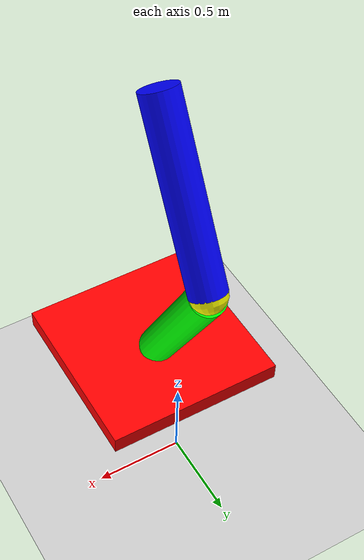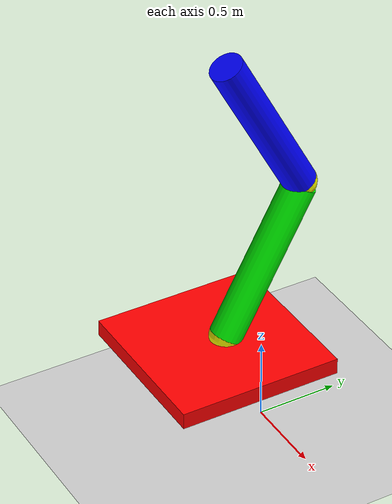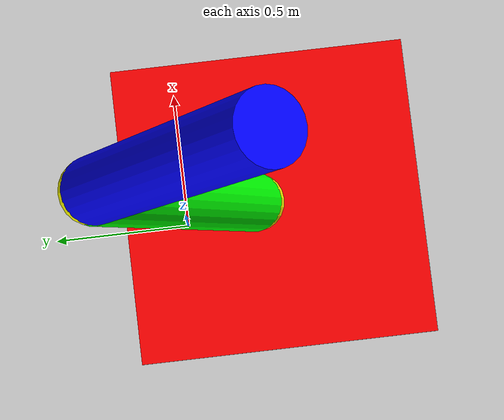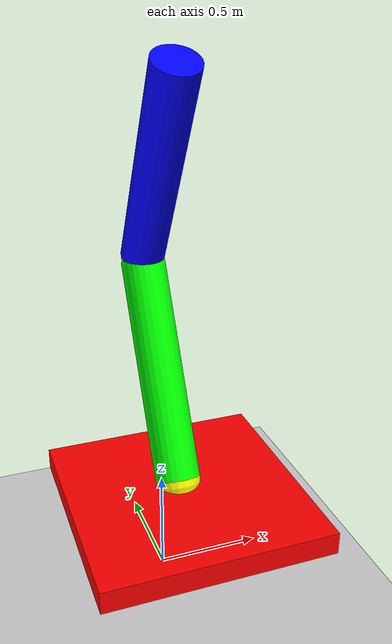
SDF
<?xml version="1.0" ?>
<sdf version="1.10">

    <!--this section of the code defines the 3D space the objects will lie in-->
    <world name="robot_world">
        <physics name="1ms" type="ignored">
            <max_step_size>0.001</max_step_size>
            <real_time_factor>1.0</real_time_factor>
        </physics>
        <plugin
            filename="gz-sim-physics-system"
            name="gz::sim::systems::Physics">
        </plugin>
        <plugin
            filename="gz-sim-user-commands-system"
            name="gz::sim::systems::UserCommands">
        </plugin>
        <plugin
            filename="gz-sim-scene-broadcaster-system"
            name="gz::sim::systems::SceneBroadcaster">
        </plugin>

        <!-- lighting settings -->
         <light type="directional" name="sun">
            <cast_shadows>true</cast_shadows>
            <pose>0 0 10 0 0 0</pose>
            <diffuse>0.8 0.8 0.8 1</diffuse>
            <specular>0.2 0.2 0.2 1</specular>
            <attenuation>
                <range>1000</range>
                <constant>0.9</constant>
                <linear>0.01</linear>
                <quadratic>0.001</quadratic>
            </attenuation>
            <direction>-0.5 0.1 -0.9</direction>
        </light>

        <!--This section defines the ground of the world-->
        <model name="ground_plane">
            <static>true</static>
            <link name="link">
                <collision name="collision">
                    <geometry>
                        <plane>
                            <normal>0 0 0</normal>
                        </plane>
                    </geometry>
                </collision>
                <visual name="visual">
                    <geometry>
                        <plane>
                            <normal>0 0 0</normal>
                            <size>100 100</size>
                        </plane>
                    </geometry>
                    <material>
                        <ambient>0 0 1 1</ambient>
                        <diffuse>0.8 0.8 0.8 1</diffuse>
                        <specular>0.8 0.8 0.8 1</specular>
                    </material>
                </visual>
            </link>
        </model>

             <!--Model of legs-->
        <model name="neptr" conical_links='chassis'>
        <pose relative_to="world">0 0 1.0 0 0 0</pose>

             <!-- Upper Link -->
            <link name="Upper_Link">
                <pose>0 0 1.0 0.5 0 0</pose> <!-- Positioning of the Upper_Link -->
                <inertial>
                    <mass>1</mass>
                    <inertia>
                        <ixx>0.1</ixx>
                        <ixy>0</ixy>
                        <ixz>0</ixz>
                        <iyy>0.5</iyy>
                        <iyz>0</iyz>
                        <izz>0.5</izz>
                    </inertia>
                </inertial>
                <visual name="Upper_Link_visual">
                    <geometry>
                        <cylinder>
                            <radius>0.1</radius>
                            <length>1.0</length>
                        </cylinder>
                    </geometry>
                    <material>
                        <ambient>0 0 1 1</ambient>
                        <diffuse>0 0 1 1</diffuse>
                        <specular>0 0 1 1</specular>
                    </material>
                </visual>

    <!-- Sphere representing the joint, placed at the bottom of Upper_Link -->
    <visual name="Upper_Lower_Link_joint_visual">
        <pose>0 0 -0.5 0 0 0</pose> <!-- Positioned at the end of Upper_Link -->
        <geometry>
            <sphere>
                <radius>0.1</radius>
            </sphere>
        </geometry>
        <material>
            <ambient>1 1 0 1</ambient>
            <diffuse>1 1 0 1</diffuse>
            <specular>1 1 0 1</specular>
        </material>
    </visual>

    <collision name="Upper_Link_collision">
        <geometry>
            <cylinder>
                <radius>0.1</radius>
                <length>1.0</length>
            </cylinder>
        </geometry>
    </collision>
</link>

<!-- Lower Link, positioned to connect to the sphere at the end of Upper_Link -->
<link name="Lower_Link">
    <pose>0 0 0.10 -0.5 0 0</pose> <!-- Place Lower_Link relative to the joint position -->
    <inertial>
        <mass>1</mass>
        <inertia>
            <ixx>0.1</ixx>
            <ixy>0</ixy>
            <ixz>0</ixz>
            <iyy>0.5</iyy>
            <iyz>0</iyz>
            <izz>0.5</izz>
        </inertia>
    </inertial>
    <visual name="Lower_Link_visual">
        <geometry>
            <cylinder>
                <radius>0.1</radius>
                <length>1.0</length>
            </cylinder>
        </geometry>
        <material>
            <ambient>0 1 0 1</ambient>
            <diffuse>0 1 0 1</diffuse>
            <specular>0 1 0 1</specular>
        </material>
    </visual>

    <visual name="Lower_foot_joint" type="revolute">
    <pose>0 0 -0.5 0 0 0</pose>
     <geometry>
            <sphere>
                <radius>0.1</radius>
            </sphere>
        </geometry>
        <material>
            <ambient>1 1 0 1</ambient>
            <diffuse>1 1 0 1</diffuse>
            <specular>1 1 0 1</specular>
        </material>
    </visual>

    <collision name="Lower_Link_collision">
        <geometry>
            <cylinder>
                <radius>0.1</radius>
                <length>1.0</length>
            </cylinder>
        </geometry>
    </collision>
</link>

            <!-- Foot -->
            <link name="Foot">
                <pose>0 -.3 -.4 0 0 0</pose>
                <inertial>
                    <mass>1</mass>
                    <inertia>
                        <ixx>0.1</ixx>
                        <ixy>0</ixy>
                        <ixz>0</ixz>
                        <iyy>0.5</iyy>
                        <iyz>0</iyz>
                        <izz>0.5</izz>
                    </inertia>
                </inertial>
                <visual name="Foot_visual">
                    <geometry>
                        <box>
                            <size> 1 1 .1 </size>
                        </box>
                    </geometry>
                    <material>
                        <ambient>1 0 0 1</ambient>
                        <diffuse>1 0 0 1</diffuse>
                        <specular>1 0 0 1</specular>
                    </material>
                </visual>
                <collision name="Foot_collision">
                    <geometry>
                        <box>
                            <size> 1 1 1 </size>
                        </box>
                    </geometry>
                </collision>
            </link>

            <!-- Joints -->
            <joint name="Upper_Lower_Link_joint" type="revolute">
                <pose>0 0 -0.5 0 0 0</pose>
                <parent>Upper_Link</parent>
                <child>Lower_Link</child>
                <axis>
                    <xyz>0 0 1</xyz>
                    <limit>
                        <lower>-1.5708</lower>
                        <upper>1.5708</upper>
                    </limit>
                </axis>
            </joint>

            <joint name="Lower_Foot_joint" type="revolute">
                <pose>0 0 -0.5 0 0 0</pose>
                <parent>Lower_Link</parent>
                <child>Foot</child>
                <axis>
                    <xyz>0 0 1</xyz>
                    <limit>
                        <lower>-1.5708</lower>
                        <upper>1.5708</upper>
                    </limit>
                </axis>
            </joint>

        </model>
    </world>
</sdf>
